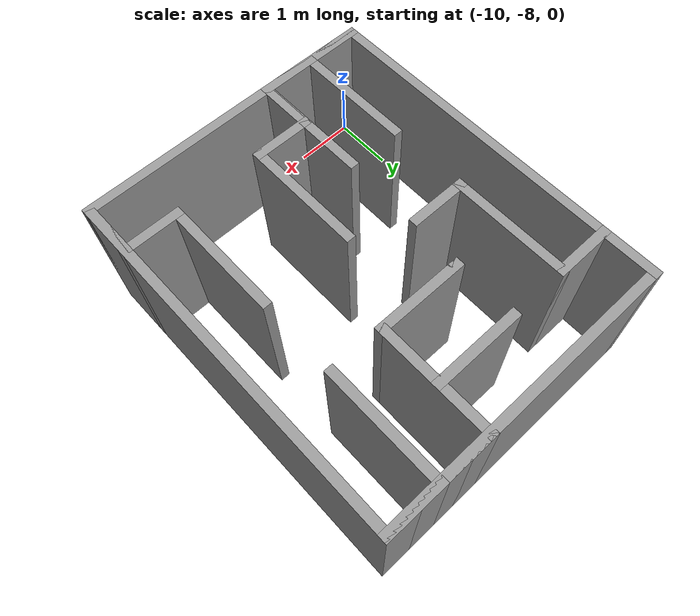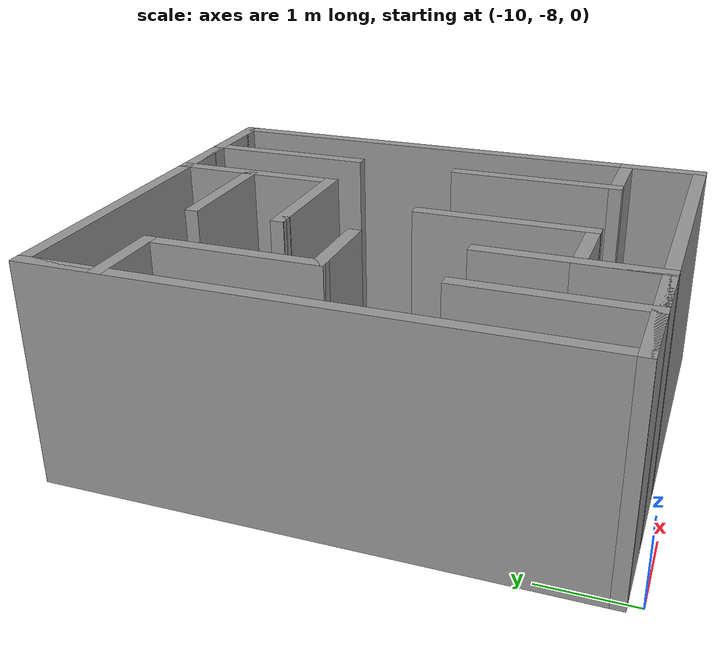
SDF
<?xml version='1.0'?>
<sdf version='1.6'>
  <model name='building3'>
    <pose frame=''>-7.595 -4.855 0 0 -0 0</pose>
    <link name='Wall_0'>
      <collision name='Wall_0_Collision'>
        <geometry>
          <box>
            <size>5 0.15 2.5</size>
          </box>
        </geometry>
        <pose frame=''>0 0 1.25 0 -0 0</pose>
      </collision>
      <visual name='Wall_0_Visual'>
        <pose frame=''>0 0 1.25 0 -0 0</pose>
        <geometry>
          <box>
            <size>5 0.15 2.5</size>
          </box>
        </geometry>
        <material>
          <script>
            <uri>file://media/materials/scripts/gazebo.material</uri>
            <name>Gazebo/Grey</name>
          </script>
          <ambient>1 1 1 1</ambient>
        </material>
        <meta>
          <layer>0</layer>
        </meta>
      </visual>
      <pose frame=''>1e-06 2.925 0 0 -0 0</pose>
    </link>
    <link name='Wall_1'>
      <collision name='Wall_1_Collision'>
        <geometry>
          <box>
            <size>6 0.15 2.5</size>
          </box>
        </geometry>
        <pose frame=''>0 0 1.25 0 -0 0</pose>
      </collision>
      <visual name='Wall_1_Visual'>
        <pose frame=''>0 0 1.25 0 -0 0</pose>
        <geometry>
          <box>
            <size>6 0.15 2.5</size>
          </box>
        </geometry>
        <material>
          <script>
            <uri>file://media/materials/scripts/gazebo.material</uri>
            <name>Gazebo/Grey</name>
          </script>
          <ambient>1 1 1 1</ambient>
        </material>
        <meta>
          <layer>0</layer>
        </meta>
      </visual>
      <pose frame=''>2.425 0 0 0 0 -1.5708</pose>
    </link>
    <link name='Wall_11'>
      <collision name='Wall_11_Collision'>
        <geometry>
          <box>
            <size>1 0.15 2.5</size>
          </box>
        </geometry>
        <pose frame=''>0 0 1.25 0 -0 0</pose>
      </collision>
      <visual name='Wall_11_Visual'>
        <pose frame=''>0 0 1.25 0 -0 0</pose>
        <geometry>
          <box>
            <size>1 0.15 2.5</size>
          </box>
        </geometry>
        <material>
          <script>
            <uri>file://media/materials/scripts/gazebo.material</uri>
            <name>Gazebo/Grey</name>
          </script>
          <ambient>1 1 1 1</ambient>
        </material>
        <meta>
          <layer>0</layer>
        </meta>
      </visual>
      <pose frame=''>-2 -2.925 0 0 -0 0</pose>
    </link>
    <link name='Wall_12'>
      <collision name='Wall_12_Collision'>
        <geometry>
          <box>
            <size>2 0.15 2.5</size>
          </box>
        </geometry>
        <pose frame=''>0 0 1.25 0 -0 0</pose>
      </collision>
      <visual name='Wall_12_Visual'>
        <pose frame=''>0 0 1.25 0 -0 0</pose>
        <geometry>
          <box>
            <size>2 0.15 2.5</size>
          </box>
        </geometry>
        <material>
          <script>
            <uri>file://media/materials/scripts/gazebo.material</uri>
            <name>Gazebo/Grey</name>
          </script>
          <ambient>1 1 1 1</ambient>
        </material>
        <meta>
          <layer>0</layer>
        </meta>
      </visual>
      <pose frame=''>-1.575 -2 0 0 -0 1.5708</pose>
    </link>
    <link name='Wall_14'>
      <collision name='Wall_14_Collision'>
        <geometry>
          <box>
            <size>1 0.15 2.5</size>
          </box>
        </geometry>
        <pose frame=''>0 0 1.25 0 -0 0</pose>
      </collision>
      <visual name='Wall_14_Visual'>
        <pose frame=''>0 0 1.25 0 -0 0</pose>
        <geometry>
          <box>
            <size>1 0.15 2.5</size>
          </box>
        </geometry>
        <material>
          <script>
            <uri>file://media/materials/scripts/gazebo.material</uri>
            <name>Gazebo/Grey</name>
          </script>
          <ambient>1 1 1 1</ambient>
        </material>
        <meta>
          <layer>0</layer>
        </meta>
      </visual>
      <pose frame=''>-1.15 -2.925 0 0 -0 0</pose>
    </link>
    <link name='Wall_15'>
      <collision name='Wall_15_Collision'>
        <geometry>
          <box>
            <size>2 0.15 2.5</size>
          </box>
        </geometry>
        <pose frame=''>0 0 1.25 0 -0 0</pose>
      </collision>
      <visual name='Wall_15_Visual'>
        <pose frame=''>0 0 1.25 0 -0 0</pose>
        <geometry>
          <box>
            <size>2 0.15 2.5</size>
          </box>
        </geometry>
        <material>
          <script>
            <uri>file://media/materials/scripts/gazebo.material</uri>
            <name>Gazebo/Grey</name>
          </script>
          <ambient>1 1 1 1</ambient>
        </material>
        <meta>
          <layer>0</layer>
        </meta>
      </visual>
      <pose frame=''>-0.724999 -2 0 0 -0 1.5708</pose>
    </link>
    <link name='Wall_17'>
      <collision name='Wall_17_Collision'>
        <geometry>
          <box>
            <size>1 0.15 2.5</size>
          </box>
        </geometry>
        <pose frame=''>0 0 1.25 0 -0 0</pose>
      </collision>
      <visual name='Wall_17_Visual'>
        <pose frame=''>0 0 1.25 0 -0 0</pose>
        <geometry>
          <box>
            <size>1 0.15 2.5</size>
          </box>
        </geometry>
        <material>
          <script>
            <uri>file://media/materials/scripts/gazebo.material</uri>
            <name>Gazebo/Grey</name>
          </script>
          <ambient>1 1 1 1</ambient>
        </material>
        <meta>
          <layer>0</layer>
        </meta>
      </visual>
      <pose frame=''>2.425 -2.5 0 0 -0 1.5708</pose>
    </link>
    <link name='Wall_2'>
      <collision name='Wall_2_Collision'>
        <geometry>
          <box>
            <size>5 0.15 2.5</size>
          </box>
        </geometry>
        <pose frame=''>0 0 1.25 0 -0 0</pose>
      </collision>
      <visual name='Wall_2_Visual'>
        <pose frame=''>0 0 1.25 0 -0 0</pose>
        <geometry>
          <box>
            <size>5 0.15 2.5</size>
          </box>
        </geometry>
        <material>
          <script>
            <uri>file://media/materials/scripts/gazebo.material</uri>
            <name>Gazebo/Grey</name>
          </script>
          <ambient>1 1 1 1</ambient>
        </material>
        <meta>
          <layer>0</layer>
        </meta>
      </visual>
      <pose frame=''>1e-06 -2.925 0 0 -0 3.14159</pose>
    </link>
    <link name='Wall_23'>
      <collision name='Wall_23_Collision'>
        <geometry>
          <box>
            <size>1 0.15 2.5</size>
          </box>
        </geometry>
        <pose frame=''>0 0 1.25 0 -0 0</pose>
      </collision>
      <visual name='Wall_23_Visual'>
        <pose frame=''>0 0 1.25 0 -0 0</pose>
        <geometry>
          <box>
            <size>1 0.15 2.5</size>
          </box>
        </geometry>
        <material>
          <script>
            <uri>file://media/materials/scripts/gazebo.material</uri>
            <name>Gazebo/Grey</name>
          </script>
          <ambient>1 1 1 1</ambient>
        </material>
        <meta>
          <layer>0</layer>
        </meta>
      </visual>
      <pose frame=''>2 2.925 0 0 -0 3.14159</pose>
    </link>
    <link name='Wall_24'>
      <collision name='Wall_24_Collision'>
        <geometry>
          <box>
            <size>2 0.15 2.5</size>
          </box>
        </geometry>
        <pose frame=''>0 0 1.25 0 -0 0</pose>
      </collision>
      <visual name='Wall_24_Visual'>
        <pose frame=''>0 0 1.25 0 -0 0</pose>
        <geometry>
          <box>
            <size>2 0.15 2.5</size>
          </box>
        </geometry>
        <material>
          <script>
            <uri>file://media/materials/scripts/gazebo.material</uri>
            <name>Gazebo/Grey</name>
          </script>
          <ambient>1 1 1 1</ambient>
        </material>
        <meta>
          <layer>0</layer>
        </meta>
      </visual>
      <pose frame=''>1.575 2 0 0 0 -1.5708</pose>
    </link>
    <link name='Wall_26'>
      <collision name='Wall_26_Collision'>
        <geometry>
          <box>
            <size>1 0.15 2.5</size>
          </box>
        </geometry>
        <pose frame=''>0 0 1.25 0 -0 0</pose>
      </collision>
      <visual name='Wall_26_Visual'>
        <pose frame=''>0 0 1.25 0 -0 0</pose>
        <geometry>
          <box>
            <size>1 0.15 2.5</size>
          </box>
        </geometry>
        <material>
          <script>
            <uri>file://media/materials/scripts/gazebo.material</uri>
            <name>Gazebo/Grey</name>
          </script>
          <ambient>1 1 1 1</ambient>
        </material>
        <meta>
          <layer>0</layer>
        </meta>
      </visual>
      <pose frame=''>1.15 2.925 0 0 -0 3.14159</pose>
    </link>
    <link name='Wall_27'>
      <collision name='Wall_27_Collision'>
        <geometry>
          <box>
            <size>2 0.15 2.5</size>
          </box>
        </geometry>
        <pose frame=''>0 0 1.25 0 -0 0</pose>
      </collision>
      <visual name='Wall_27_Visual'>
        <pose frame=''>0 0 1.25 0 -0 0</pose>
        <geometry>
          <box>
            <size>2 0.15 2.5</size>
          </box>
        </geometry>
        <material>
          <script>
            <uri>file://media/materials/scripts/gazebo.material</uri>
            <name>Gazebo/Grey</name>
          </script>
          <ambient>1 1 1 1</ambient>
        </material>
        <meta>
          <layer>0</layer>
        </meta>
      </visual>
      <pose frame=''>0.725001 2 0 0 0 -1.5708</pose>
    </link>
    <link name='Wall_29'>
      <collision name='Wall_29_Collision'>
        <geometry>
          <box>
            <size>1 0.15 2.5</size>
          </box>
        </geometry>
        <pose frame=''>0 0 1.25 0 -0 0</pose>
      </collision>
      <visual name='Wall_29_Visual'>
        <pose frame=''>0 0 1.25 0 -0 0</pose>
        <geometry>
          <box>
            <size>1 0.15 2.5</size>
          </box>
        </geometry>
        <material>
          <script>
            <uri>file://media/materials/scripts/gazebo.material</uri>
            <name>Gazebo/Grey</name>
          </script>
          <ambient>1 1 1 1</ambient>
        </material>
        <meta>
          <layer>0</layer>
        </meta>
      </visual>
      <pose frame=''>0.725001 2.5 0 0 0 -1.5708</pose>
    </link>
    <link name='Wall_3'>
      <collision name='Wall_3_Collision'>
        <geometry>
          <box>
            <size>6 0.15 2.5</size>
          </box>
        </geometry>
        <pose frame=''>0 0 1.25 0 -0 0</pose>
      </collision>
      <visual name='Wall_3_Visual'>
        <pose frame=''>0 0 1.25 0 -0 0</pose>
        <geometry>
          <box>
            <size>6 0.15 2.5</size>
          </box>
        </geometry>
        <material>
          <script>
            <uri>file://media/materials/scripts/gazebo.material</uri>
            <name>Gazebo/Grey</name>
          </script>
          <ambient>1 1 1 1</ambient>
        </material>
        <meta>
          <layer>0</layer>
        </meta>
      </visual>
      <pose frame=''>-2.425 0 0 0 -0 1.5708</pose>
    </link>
    <link name='Wall_30'>
      <collision name='Wall_30_Collision'>
        <geometry>
          <box>
            <size>1.5 0.15 2.5</size>
          </box>
        </geometry>
        <pose frame=''>0 0 1.25 0 -0 0</pose>
      </collision>
      <visual name='Wall_30_Visual'>
        <pose frame=''>0 0 1.25 0 -0 0</pose>
        <geometry>
          <box>
            <size>1.5 0.15 2.5</size>
          </box>
        </geometry>
        <material>
          <script>
            <uri>file://media/materials/scripts/gazebo.material</uri>
            <name>Gazebo/Grey</name>
          </script>
          <ambient>1 1 1 1</ambient>
        </material>
        <meta>
          <layer>0</layer>
        </meta>
      </visual>
      <pose frame=''>0.05 2.075 0 0 -0 3.14159</pose>
    </link>
    <link name='Wall_32'>
      <collision name='Wall_32_Collision'>
        <geometry>
          <box>
            <size>1 0.15 2.5</size>
          </box>
        </geometry>
        <pose frame=''>0 0 1.25 0 -0 0</pose>
      </collision>
      <visual name='Wall_32_Visual'>
        <pose frame=''>0 0 1.25 0 -0 0</pose>
        <geometry>
          <box>
            <size>1 0.15 2.5</size>
          </box>
        </geometry>
        <material>
          <script>
            <uri>file://media/materials/scripts/gazebo.material</uri>
            <name>Gazebo/Grey</name>
          </script>
          <ambient>1 1 1 1</ambient>
        </material>
        <meta>
          <layer>0</layer>
        </meta>
      </visual>
      <pose frame=''>-0.724999 -2.5 0 0 -0 1.5708</pose>
    </link>
    <link name='Wall_33'>
      <collision name='Wall_33_Collision'>
        <geometry>
          <box>
            <size>1 0.15 2.5</size>
          </box>
        </geometry>
        <pose frame=''>0 0 1.25 0 -0 0</pose>
      </collision>
      <visual name='Wall_33_Visual'>
        <pose frame=''>0 0 1.25 0 -0 0</pose>
        <geometry>
          <box>
            <size>1 0.15 2.5</size>
          </box>
        </geometry>
        <material>
          <script>
            <uri>file://media/materials/scripts/gazebo.material</uri>
            <name>Gazebo/Grey</name>
          </script>
          <ambient>1 1 1 1</ambient>
        </material>
        <meta>
          <layer>0</layer>
        </meta>
      </visual>
      <pose frame=''>-0.299999 -2.075 0 0 -0 0</pose>
    </link>
    <link name='Wall_34'>
      <collision name='Wall_34_Collision'>
        <geometry>
          <box>
            <size>2 0.15 2.5</size>
          </box>
        </geometry>
        <pose frame=''>0 0 1.25 0 -0 0</pose>
      </collision>
      <visual name='Wall_34_Visual'>
        <pose frame=''>0 0 1.25 0 -0 0</pose>
        <geometry>
          <box>
            <size>2 0.15 2.5</size>
          </box>
        </geometry>
        <material>
          <script>
            <uri>file://media/materials/scripts/gazebo.material</uri>
            <name>Gazebo/Grey</name>
          </script>
          <ambient>1 1 1 1</ambient>
        </material>
        <meta>
          <layer>0</layer>
        </meta>
      </visual>
      <pose frame=''>0.125001 -1.15 0 0 -0 1.5708</pose>
    </link>
    <link name='Wall_37'>
      <collision name='Wall_37_Collision'>
        <geometry>
          <box>
            <size>1 0.15 2.5</size>
          </box>
        </geometry>
        <pose frame=''>0 0 1.25 0 -0 0</pose>
      </collision>
      <visual name='Wall_37_Visual'>
        <pose frame=''>0 0 1.25 0 -0 0</pose>
        <geometry>
          <box>
            <size>1 0.15 2.5</size>
          </box>
        </geometry>
        <material>
          <script>
            <uri>file://media/materials/scripts/gazebo.material</uri>
            <name>Gazebo/Grey</name>
          </script>
          <ambient>1 1 1 1</ambient>
        </material>
        <meta>
          <layer>0</layer>
        </meta>
      </visual>
      <pose frame=''>2 -2.075 0 0 -0 3.14159</pose>
    </link>
    <link name='Wall_38'>
      <collision name='Wall_38_Collision'>
        <geometry>
          <box>
            <size>2 0.15 2.5</size>
          </box>
        </geometry>
        <pose frame=''>0 0 1.25 0 -0 0</pose>
      </collision>
      <visual name='Wall_38_Visual'>
        <pose frame=''>0 0 1.25 0 -0 0</pose>
        <geometry>
          <box>
            <size>2 0.15 2.5</size>
          </box>
        </geometry>
        <material>
          <script>
            <uri>file://media/materials/scripts/gazebo.material</uri>
            <name>Gazebo/Grey</name>
          </script>
          <ambient>1 1 1 1</ambient>
        </material>
        <meta>
          <layer>0</layer>
        </meta>
      </visual>
      <pose frame=''>1.575 -1.15 0 0 -0 1.5708</pose>
    </link>
    <link name='Wall_40'>
      <collision name='Wall_40_Collision'>
        <geometry>
          <box>
            <size>1.5 0.15 2.5</size>
          </box>
        </geometry>
        <pose frame=''>0 0 1.25 0 -0 0</pose>
      </collision>
      <visual name='Wall_40_Visual'>
        <pose frame=''>0 0 1.25 0 -0 0</pose>
        <geometry>
          <box>
            <size>1.5 0.15 2.5</size>
          </box>
        </geometry>
        <material>
          <script>
            <uri>file://media/materials/scripts/gazebo.material</uri>
            <name>Gazebo/Grey</name>
          </script>
          <ambient>1 1 1 1</ambient>
        </material>
        <meta>
          <layer>0</layer>
        </meta>
      </visual>
      <pose frame=''>0.05 1.075 0 0 -0 3.14159</pose>
    </link>
    <link name='Wall_41'>
      <collision name='Wall_41_Collision'>
        <geometry>
          <box>
            <size>0.16 0.15 2.5</size>
          </box>
        </geometry>
        <pose frame=''>0 0 1.25 0 -0 0</pose>
      </collision>
      <visual name='Wall_41_Visual'>
        <pose frame=''>0 0 1.25 0 -0 0</pose>
        <geometry>
          <box>
            <size>0.16 0.15 2.5</size>
          </box>
        </geometry>
        <material>
          <script>
            <uri>file://media/materials/scripts/gazebo.material</uri>
            <name>Gazebo/Grey</name>
          </script>
          <ambient>1 1 1 1</ambient>
        </material>
        <meta>
          <layer>0</layer>
        </meta>
      </visual>
      <pose frame=''>-0.62 1.075 0 0 -0 0</pose>
    </link>
    <link name='Wall_42'>
      <collision name='Wall_42_Collision'>
        <geometry>
          <box>
            <size>0.16 0.15 2.5</size>
          </box>
        </geometry>
        <pose frame=''>0 0 1.25 0 -0 0</pose>
      </collision>
      <visual name='Wall_42_Visual'>
        <pose frame=''>0 0 1.25 0 -0 0</pose>
        <geometry>
          <box>
            <size>0.16 0.15 2.5</size>
          </box>
        </geometry>
        <material>
          <script>
            <uri>file://media/materials/scripts/gazebo.material</uri>
            <name>Gazebo/Grey</name>
          </script>
          <ambient>1 1 1 1</ambient>
        </material>
        <meta>
          <layer>0</layer>
        </meta>
      </visual>
      <pose frame=''>-0.609999 1.075 0 0 -0 0</pose>
    </link>
    <link name='Wall_6'>
      <collision name='Wall_6_Collision'>
        <geometry>
          <box>
            <size>1 0.15 2.5</size>
          </box>
        </geometry>
        <pose frame=''>0 0 1.25 0 -0 0</pose>
      </collision>
      <visual name='Wall_6_Visual'>
        <pose frame=''>0 0 1.25 0 -0 0</pose>
        <geometry>
          <box>
            <size>1 0.15 2.5</size>
          </box>
        </geometry>
        <material>
          <script>
            <uri>file://media/materials/scripts/gazebo.material</uri>
            <name>Gazebo/Grey</name>
          </script>
          <ambient>1 1 1 1</ambient>
        </material>
        <meta>
          <layer>0</layer>
        </meta>
      </visual>
      <pose frame=''>-2.425 2.5 0 0 0 -1.5708</pose>
    </link>
    <link name='Wall_7'>
      <collision name='Wall_7_Collision'>
        <geometry>
          <box>
            <size>1 0.15 2.5</size>
          </box>
        </geometry>
        <pose frame=''>0 0 1.25 0 -0 0</pose>
      </collision>
      <visual name='Wall_7_Visual'>
        <pose frame=''>0 0 1.25 0 -0 0</pose>
        <geometry>
          <box>
            <size>1 0.15 2.5</size>
          </box>
        </geometry>
        <material>
          <script>
            <uri>file://media/materials/scripts/gazebo.material</uri>
            <name>Gazebo/Grey</name>
          </script>
          <ambient>1 1 1 1</ambient>
        </material>
        <meta>
          <layer>0</layer>
        </meta>
      </visual>
      <pose frame=''>-2 2.075 0 0 -0 0</pose>
    </link>
    <link name='Wall_8'>
      <collision name='Wall_8_Collision'>
        <geometry>
          <box>
            <size>2 0.15 2.5</size>
          </box>
        </geometry>
        <pose frame=''>0 0 1.25 0 -0 0</pose>
      </collision>
      <visual name='Wall_8_Visual'>
        <pose frame=''>0 0 1.25 0 -0 0</pose>
        <geometry>
          <box>
            <size>2 0.15 2.5</size>
          </box>
        </geometry>
        <material>
          <script>
            <uri>file://media/materials/scripts/gazebo.material</uri>
            <name>Gazebo/Grey</name>
          </script>
          <ambient>1 1 1 1</ambient>
        </material>
        <meta>
          <layer>0</layer>
        </meta>
      </visual>
      <pose frame=''>-1.575 1.15 0 0 0 -1.5708</pose>
    </link>
    <link name='Wall_9'>
      <collision name='Wall_9_Collision'>
        <geometry>
          <box>
            <size>1 0.15 2.5</size>
          </box>
        </geometry>
        <pose frame=''>0 0 1.25 0 -0 0</pose>
      </collision>
      <visual name='Wall_9_Visual'>
        <pose frame=''>0 0 1.25 0 -0 0</pose>
        <geometry>
          <box>
            <size>1 0.15 2.5</size>
          </box>
        </geometry>
        <material>
          <script>
            <uri>file://media/materials/scripts/gazebo.material</uri>
            <name>Gazebo/Grey</name>
          </script>
          <ambient>1 1 1 1</ambient>
        </material>
        <meta>
          <layer>0</layer>
        </meta>
      </visual>
      <pose frame=''>-1.15 0.225 0 0 -0 0</pose>
    </link>
    <static>1</static>
  </model>
</sdf>
